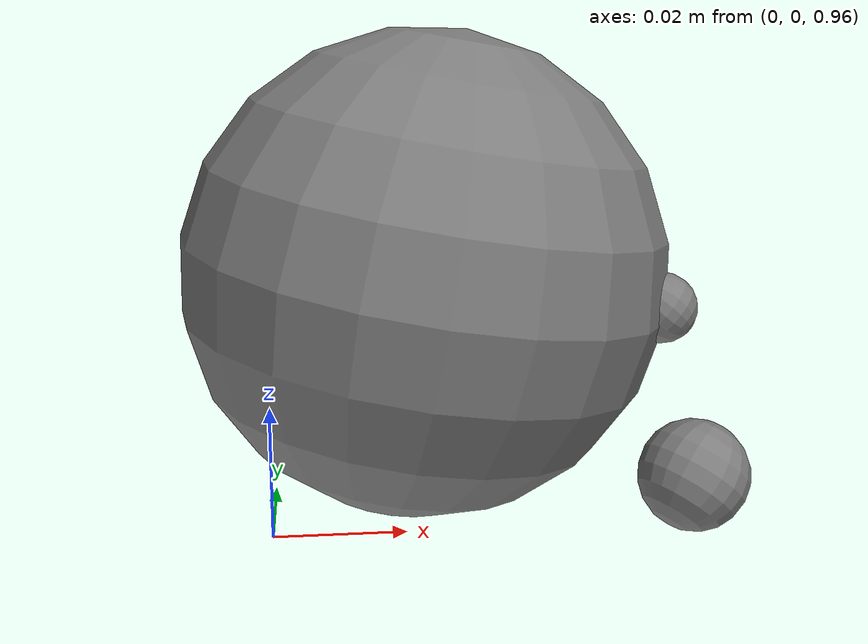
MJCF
<mujoco model="rat">
  <asset>
    <texture type="skybox" builtin="gradient" rgb1=".3 .5 .7" rgb2="0 0 0" width="32" height="512"/>
    <texture name="body" type="cube" builtin="flat" mark="cross" width="128" height="128" rgb1="0.8 0.6 0.4" rgb2="0.8 0.6 0.4" markrgb="1 1 1" random="0.01"/>
    <material name="body" texture="body" texuniform="true" rgba="0.8 0.6 .4 1"/>
    <texture name="grid" type="2d" builtin="checker" width="512" height="512" rgb1=".1 .2 .3" rgb2=".2 .3 .4"/>
    <material name="grid" texture="grid" texrepeat="1 1" texuniform="true" reflectance=".2"/>
  </asset>
  <compiler angle="radian"/>
  <size njmax="8000" nconmax="4000"/>
  <default class="body">
    <joint limited="true" solreflimit="0.01 1" solimplimit="0.99 0.9999 0" armature="6e-07" damping="0.001"/>
    <geom friction="0.7 0.005 0.0001" solref="0.005 1"/>
    <site group="3" rgba="0 0 1 1"/>
    <general ctrllimited="true" ctrlrange="-1 1" forcelimited="false" gainprm="0.01"/>
    <default class="bone">
      <geom contype="0" conaffinity="0" group="0" rgba="0.5 0.5 0.5 1" density="1100.0"/>
    </default>
    <default class="lumbar">
      <joint group="3" pos="0.003 0 -0.003" armature="1e-05" damping="0.03"/>
      <general gainprm="0.15"/>
      <default class="lumbar_extend">
        <joint stiffness="0.02" range="-0.5235987755982988 0.7853981633974483"/>
        <general gainprm="0.4"/>
      </default>
      <default class="lumbar_bend">
        <joint stiffness="0.03" range="-0.5235987755982988 0.5235987755982988"/>
      </default>
      <default class="lumbar_twist">
        <joint stiffness="0.03" range="-0.5235987755982988 0.5235987755982988"/>
      </default>
    </default>
    <default class="cervical">
      <joint group="3" pos="-0.02 0 -0.05" stiffness="1.0" armature="0.001" damping="1.0"/>
      <default class="cervical_extend">
        <joint range="-0.4072434921320102 0.6108652381980153"/>
        <general gainprm="2.5"/>
      </default>
      <default class="cervical_bend">
        <joint range="-0.6108652381980153 0.6108652381980153"/>
        <general gainprm="2.5"/>
      </default>
      <default class="cervical_twist">
        <joint range="-0.6108652381980153 0.6108652381980153"/>
        <general gainprm="2.5"/>
      </default>
    </default>
    <default class="atlas">
      <joint axis="0 -1 0" stiffness="0.002" range="-0.08726646259971647 0.7853981633974483" damping="0.002"/>
      <general gainprm="0.025"/>
    </default>
    <default class="mandible">
      <joint stiffness="0.002" range="-0.296705972839036 0.2617993877991494" springref="-0.314159265359" damping="0.002"/>
      <general gainprm="0.025"/>
    </default>
    <default class="caudal">
      <joint group="3" stiffness="1e-05" damping="0.002"/>
      <general gainprm="0.005"/>
      <default class="caudal_extend">
        <joint range="-0.08726646259971647 0.08726646259971647"/>
      </default>
      <default class="caudal_bend">
        <joint range="-0.08726646259971647 0.08726646259971647"/>
      </default>
    </default>
    <default class="hip">
      <joint armature="1e-05" damping="0.02"/>
      <general gainprm="0.2"/>
      <default class="hip_supinate">
        <joint range="-0.6981317007977318 0.5235987755982988"/>
      </default>
      <default class="hip_abduct">
        <joint range="-0.5235987755982988 1.047197551196598"/>
      </default>
      <default class="hip_extend">
        <joint range="-1.570796326794897 1.047197551196598"/>
        <general gainprm="0.3"/>
      </default>
    </default>
    <default class="knee">
      <joint range="-1.221730476396031 1.53588974175501" damping="0.005"/>
      <general gainprm="0.2"/>
    </default>
    <default class="ankle">
      <joint range="-0.1396263401595464 1.396263401595464" damping="0.003"/>
      <general gainprm="0.2"/>
    </default>
    <default class="toe">
      <joint range="0 0.8726646259971648" damping="0.001"/>
      <general gainprm="0.025"/>
    </default>
    <default class="scapula">
      <joint damping="0.005" solimplimit="0 .99 .01"/>
      <default class="scapula_supinate">
        <joint pos="0 0.005000000000000001 0" range="-0.0174532925199433 0.1745329251994329"/>
      </default>
      <default class="scapula_abduct">
        <joint pos="0 0.005000000000000001 -0.01" range="-0.2617993877991494 0.2617993877991494"/>
      </default>
      <default class="scapula_extend">
        <joint pos="0 0 0" range="-0.03490658503988659 0.03490658503988659"/>
        <general gainprm="0.25"/>
      </default>
    </default>
    <default class="shoulder">
      <joint range="-1.308996938995747 0.8726646259971648" damping="0.005" solimplimit="0 .99 .01"/>
      <general gainprm="0.15"/>
    </default>
    <default class="shoulder_sup">
      <joint range="-0.05235987755982989 1.134464013796314" damping="0.005" solimplimit="0 .99 .01"/>
      <general gainprm="0.15"/>
    </default>
    <default class="elbow">
      <joint range="-1.308996938995747 0.6981317007977318" damping="0.003"/>
      <general gainprm="0.15"/>
    </default>
    <default class="wrist">
      <joint range="-0.3490658503988659 2.094395102393195" damping="0.002"/>
      <general gainprm="0.05"/>
    </default>
    <default class="finger">
      <joint range="0 1.570796326794897" damping="0.002"/>
      <general gainprm="0.025"/>
    </default>
    <default class="sensor">
      <site group="4"/>
    </default>
    <default class="tracking_site">
      <site type="sphere" size="0.027" rgba="1 0 0 1" group="3"/>
    </default>
  </default>
  <visual>
    <quality shadowsize="2048"/>
  </visual>
  <statistic meansize="0.003"/>
  <worldbody>
    <geom name="floor" size="0 0 .1" type="plane" material="grid" condim="3"/>
    <body name="torso" pos="0.03099526054578288 2.058524937651458e-07 1" childclass="body">
      <freejoint name="root"/>
      <site name="tracking[torso]" class="tracking_site" />
      <light name="tracking_light" mode="trackcom" pos="0 0 3"/>
      <camera name="back" mode="trackcom" pos="-1 0 0.5" xyaxes="0 -1 0 1 0 2"/>
      <camera name="side" mode="trackcom" pos="0 -1 0.5" xyaxes="1 0 0 0 1 2"/>
      <camera name="side_alt" mode="trackcom" pos="0.5 -0.561 0.199" xyaxes="0.766 0.643 0.000 -0.162 0.192 0.968"/>
      <camera name="top" mode="trackcom" fovy="100.0" pos="0 0 1" zaxis="0 -0.2 1"/>
      <geom name="collision_torso"  type="sphere" size="0.035" density="468.251260009" pos="-0.008200000000000001 0 0" euler="0 0.1745329251994329 0"/>

      <body name="scapula_R" pos="0.00656 -0.00164 0.01148">
        <site name="tracking[scapula_R]" class="tracking_site" />
        <joint name="scapula_R_supinate" class="scapula_supinate" pos="0 0.005000000000000001 0" axis="0 0 -1" type="hinge" stiffness="1" limited="true"/>
        <joint name="scapula_R_abduct" class="scapula_abduct" pos="0 0.005000000000000001 -0.01" axis="-1 0 0"/>
        <joint name="scapula_R_extend" class="scapula_extend" pos="0 0 0" axis="-0.3 1 0"/> -->
        <site name="shoulder_R" size="0.002" pos="0.0287 -0.00984 -0.02542"/>
        <geom name="scapula_R_collision"  type="sphere" size="0.005005370266735553 0.01463183127343655 0.02431103959679604" density="513.564646393" pos="0.01757062018850453 -0.008637295267367218 -0.01522952062810994" quat="0.3867556972129688 0.4740321312040688 0.7692223496423682 0.1844194839763772"/>
        <body name="upper_arm_R" pos="0.0287 -0.00984 -0.02542">
          <site name="tracking[upper_arm_R]" class="tracking_site" />
          <joint name="shoulder_R" class="shoulder" axis="0 1 0"/>
          <joint name="shoulder_sup_R" class="shoulder_sup" axis="-0 -0 1"/>
          <site name="elbow_R" type="cylinder" size="0.0006000000000000001 0.004" pos="-0.01593120836133218 -0.01035528543486592 -0.02230369170586505" zaxis="0 1 -0.2"/>
          <geom name="humerus_R_collision"  size="0.007771321151869356 0.01554264230373871" pos="-0.007743341889514446 -0.005788347560550173 -0.01198335067124012" quat="0.8109593935310486 0.0007013948082913995 0.3450082795040448 0.4725607444157158"/>
        </body>
      </body>
    </body>
  </worldbody>
  <contact>
    <pair geom1="collision_torso" geom2="floor"/>
    <pair geom1="scapula_R_collision" geom2="floor"/>
  </contact>
  <actuator>
  </actuator>
  <compiler meshdir="./"/>
</mujoco>
